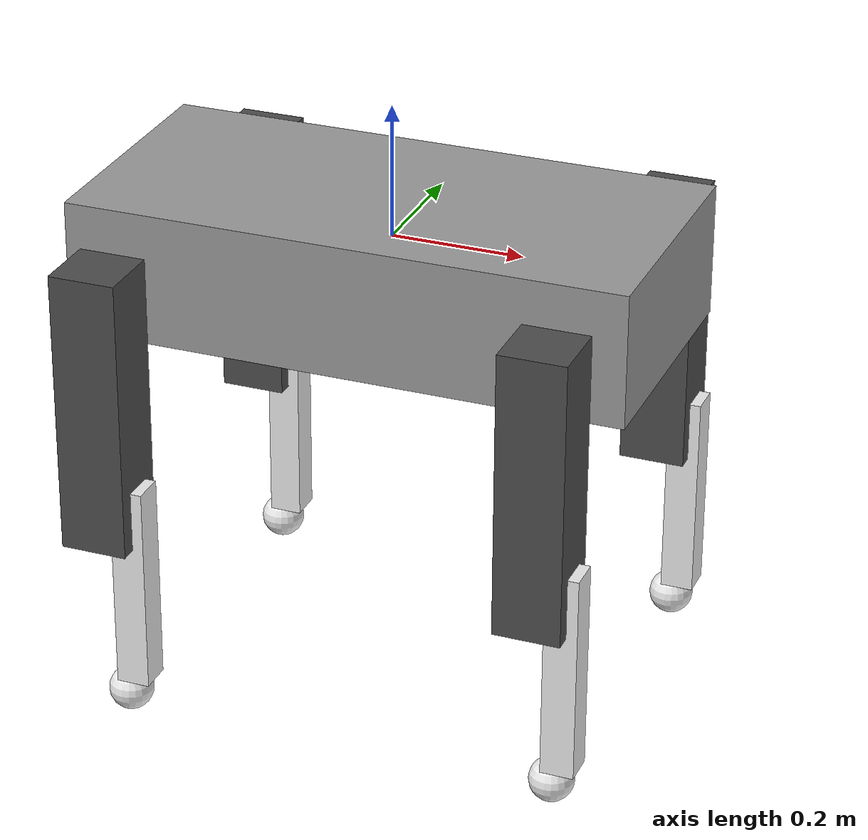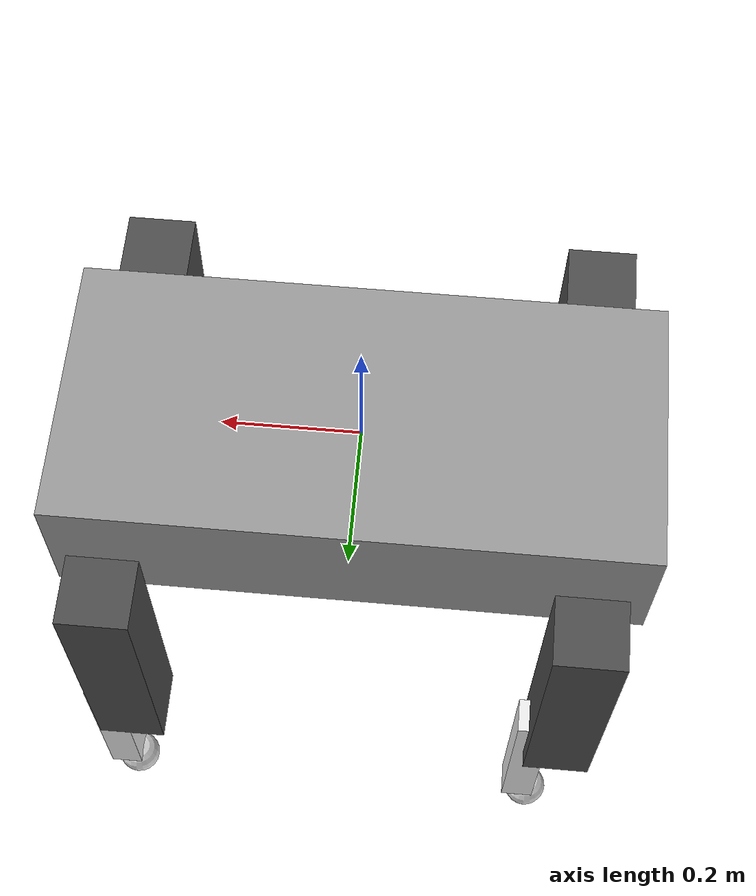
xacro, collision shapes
<?xml version="1.0" encoding="utf-8"?>
<robot name="popi" xmlns:xacro="http://www.ros.org/wiki/xacro">

<!-- Import Rviz colors -->
 	<xacro:include filename="$(find popi_description)/xacro/physicprop.xacro" />

<!--*************************************** CORPS ****************************************-->

	<link name="Base_flottante">
        <visual>
            <origin rpy="0 0 0" xyz="0 0 0"/>
            <geometry>
                <box size="0.001 0.001 0.001"/>
            </geometry>
        </visual>
    </link>

    <joint name="base_flottante" type="fixed">
        <origin rpy="0 0 0" xyz="0 0 0"/>
        <parent link="Base_flottante"/>
        <child link="Bati"/>
    </joint>

  	<link name="Bati">
	    <inertial>
		    <origin xyz="0 0 -0.03523"
		        	rpy="0 0 0" />
		    <mass value="${masse_bati}" />
		    <inertia 	ixx="0.38573"  ixy="0"   		ixz="0"
										iyy="0.90692" 	iyz="0"
		        										izz="1.2277" />
	    </inertial>
	    <visual>
		    <origin xyz="0 0 0"
		        	rpy="0 0 0" />
		    <geometry>
		    	<mesh filename="package://popi_description/meshes/Bati.STL" />
		    </geometry>
		    <material name="grey"/>
	    </visual>
	    <collision>
	      	<origin xyz="0 0 -0.035"
	        	  	rpy="0 0 0" />
	      	<geometry>
          		<box size="0.84 0.4 0.2" />
	      	</geometry>
	    </collision>
  	</link>

<!--********************************* JAMBE AVANT-DROITE *********************************-->

  	<link name="EpauleAVD">
	    <inertial>
	      	<origin xyz="-0.00137 0.04355 -0.00354"
	        		rpy="0 0 0" />
	     	<mass value="${masse_epaule}" />
	      	<inertia  	ixx="0.0286" 	ixy="6E-05" 	ixz="-0.00018"
	        							iyy="0.01067" 	iyz="-0.00075"
	        											izz="0.02893" />
	    </inertial>
    	<visual>
      		<origin xyz="0 0 0"
        			rpy="0 0 0" />
	      	<geometry>
	        	<mesh filename="package://popi_description/meshes/EpauleAVD.STL" />
	      	</geometry>
	      	<material name="orange"/>
    	</visual>
    	<collision>
      		<origin xyz="0 0.075 0"
        			rpy="0 0 0" />
      		<geometry>
          		<box size="0.15 0.15 0.12" />
      		</geometry>
    	</collision>
  	</link>

  	<link name="HJambeAVD">
    	<inertial>
     		<origin xyz="0.01743 0.00512 -0.11331"
        			rpy="0 0 0" />
      		<mass value="${masse_hjambe}" />
      		<inertia 	ixx="0.00899" 	ixy="0.00215" 	ixz="0.00647"
        								iyy="0.0605"    iyz="-0.00043"
        												izz="0.05703" />
    	</inertial>
    	<visual>
      		<origin xyz="0 0 0"
        			rpy="0 -1.5708 0" />
      		<geometry>
        		<mesh filename="package://popi_description/meshes/HJambeAVD.STL" />
      		</geometry>
      		<material name="darkgrey"/>
    	</visual>
    	<collision>
      		<origin xyz="0 0 -0.15"
        			rpy="0 0 0" />
      		<geometry>
          		<box size="0.1 0.1 -0.43" />
      		</geometry>
    	</collision>
  	</link>

  	<link name="BJambeAVD">
    	<inertial>
      		<origin xyz="-0.012387 0 -0.11761"
        			rpy="0 0 0" />
      		<mass value="${masse_bjambe}" />
      		<inertia 	ixx="0.000103" 	ixy="0.000000" 	ixz="-0.00019"
      									iyy="0.006798" 	iyz="0"
        												izz="0.006776" />
    	</inertial>
    	<visual>
      		<origin xyz="0 0 0"
        			rpy="0 1.5708 0" />
      		<geometry>
        		<mesh filename="package://popi_description/meshes/BJambeAVD.STL" />
      		</geometry>
      		<material name="white"/>
    	</visual>
    	<collision>
      		<origin xyz="0 0 -0.08"
        			rpy="0 0 0" />
      		<geometry>
          		<box size="0.05 0.05 -0.32" />
      		</geometry>
    	</collision>
  	</link>

  	<link name="PiedAVD">
    	<inertial>
      		<origin xyz="0.0005 1.1348E-09 -1.2018E-09"
        			rpy="0 0 0" />
      		<mass value="${masse_pied}" />
      		<inertia 	ixx="1.0417E-10"	ixy="3.2086E-25"	ixz="2.1003E-26"
        									iyy="5.4167E-11"	iyz="6.3205E-25"
        														izz="5.4167E-11" />
    	</inertial>
    	<visual>
      		<origin xyz="0 0 0"
        	    	rpy="0 0 0" />
      		<geometry>
        		<mesh filename="package://popi_description/meshes/PiedAVD.STL" />
      		</geometry>
      		<material name="white"/>
    	</visual>
    	<collision>
      		<origin xyz="0 0 0.033"
        	  		rpy="0 0 0" />
      		<geometry>
        		<sphere radius="0.0335" />
      		</geometry>
    	</collision>
  	</link>

<!--********************************* JAMBE AVANT-GAUCHE *********************************-->

    <link name="EpauleAVG">
    	<inertial>
      		<origin xyz="-0.00137 -0.04355 -0.00354"
        			rpy="0 0 0" />
      		<mass value="${masse_epaule}" />
      		<inertia 	ixx="0.02864" 	ixy="-6E-05"	ixz="-0.00018"
        								iyy="0.01067"	iyz="0.00075"
        												izz="0.02893" />
    	</inertial>
    	<visual>
      		<origin xyz="0 0 0"
        			rpy="0 0 0" />
     		 <geometry>
       			<mesh filename="package://popi_description/meshes/EpauleAVG.STL" />
      		</geometry>
      		<material name="orange"/>
    	</visual>
    	<collision>
      		<origin xyz="0 -0.075 0"
        			rpy="0 0 0" />
      		<geometry>
          		<box size="0.15 0.15 0.12" />
      		</geometry>
    	</collision>
  	</link>

	<link name="HJambeAVG">
	    <inertial>
	      	<origin xyz="0.00901 -0.00555 -0.11389"
	        		rpy="0 -1.495 0" />
	      	<mass value="${masse_hjambe}" />
	      	<inertia 	ixx="0.01032" 	ixy="-0.00226" 	ixz="0.01011"
	        							iyy="0.06056" 	iyz="0.00025"
	        											izz="0.05596" />
	    </inertial>
	    <visual>
	     	<origin xyz="0 0 0"
	        		rpy="0 -1.495 0" />
	      	<geometry>
	        	<mesh filename="package://popi_description/meshes/HJambeAVG.STL" />
	      	</geometry>
	      	<material name="darkgrey"/>
	    </visual>
    	<collision>
      		<origin xyz="0 0 -0.15"
        			rpy="0 0 0" />
      		<geometry>
          		<box size="0.1 0.1 -0.43" />
      		</geometry>
    	</collision>
	</link>

	<link name="BJambeAVG">
	    <inertial>
	      	<origin xyz="-0.012387 0 -0.11761"
	        		rpy="0 0 0" />
	      	<mass value="${masse_bjambe}" />
	      	<inertia 	ixx="0.000103" 	ixy="0.000000" 	ixz="-0.00019"
      									iyy="0.006798" 	iyz="0"
        												izz="0.006776" />
	    </inertial>
	    <visual>
	      	<origin xyz="0 0 0"
        		  	rpy="0 1.5708 0" />
	      	<geometry>
	        	<mesh filename="package://popi_description/meshes/BJambeAVG.STL" />
	      	</geometry>
	      	<material name="white"/>
	    </visual>
    	<collision>
      		<origin xyz="0 0 -0.08"
        			rpy="0 0 0" />
      		<geometry>
          		<box size="0.05 0.05 -0.32" />
      		</geometry>
    	</collision>
	</link>

	<link name="PiedAVG">
    	<inertial>
      		<origin xyz="0.0005 -3.5068E-06 -4.4931E-09"
        	  		rpy="0 0 0" />
      		<mass value="${masse_pied}" />
      		<inertia 		ixx="1.0417E-10" 	ixy="4.4849E-25" 	ixz="1.454E-25"
        										iyy="5.4167E-11" 	iyz="6.3205E-25"
        															izz="5.4167E-11" />
    	</inertial>
	    <visual>
	    	<origin xyz="0 0 0"
	        	  	rpy="0 0 0" />
	    	<geometry>
	        	<mesh filename="package://popi_description/meshes/PiedAVG.STL" />
	      	</geometry>
	      	<material name="white"/>
	    </visual>
	    <collision>
      		<origin xyz="0 0 0.033"
        	  		rpy="0 0 0" />
      		<geometry>
        		<sphere radius="0.0335" />
      		</geometry>
    	</collision>
  	</link>

<!--******************************** JAMBE ARRIERE-DROITE ********************************-->
	<link name="EpauleARD">
	    <inertial>
	      	<origin xyz="0.00137 0.04355 -0.00354"
	        		rpy="0 0 0" />
	      	<mass value="${masse_epaule}" />
	     	<inertia 	ixx="0.02864" 	ixy="-6E-05" 	ixz="1.8E-05"
	        							iyy="0.01067"	iyz="-0.00075"
	        											izz="0.02893" />
	    </inertial>
	    <visual>
	      	<origin xyz="0 0 0"
	        		rpy="0 0 0" />
	        <geometry>
	        	<mesh filename="package://popi_description/meshes/EpauleARD.STL" />
	      	</geometry>
	      	<material name="orange"/>
	    </visual>
	    <collision>
	      	<origin xyz="0 0.075 0"
	        		rpy="0 0 0" />
	        <geometry>
          		<box size="0.15 0.15 0.12" />
	      	</geometry>
	    </collision>
	</link>

	<link name="HJambeARD">
	    <inertial>
	     	<origin xyz="0.01743 0.00512 -0.11331"
	        		rpy="0 0 0" />
	      	<mass value="${masse_hjambe}" />
	      	<inertia 	ixx="0.00899" 	ixy="0.00215" 	ixz="0.00647"
	        							iyy="0.0605"  	iyz="-0.00043"
	        											izz="0.05703" />
	    </inertial>
	    <visual>
	      	<origin xyz="0 0 0"
	        		rpy="0 -1.5708 0" />
	      	<geometry>
	        	<mesh filename="package://popi_description/meshes/HJambeARD.STL" />
	      	</geometry>
	      	<material name="darkgrey"/>
	    </visual>
    	<collision>
      		<origin xyz="0 0 -0.15"
        			rpy="0 0 0" />
      		<geometry>
          		<box size="0.1 0.1 -0.43" />
      		</geometry>
    	</collision>
	</link>

  	<link name="BJambeARD">
	    <inertial>
	      	<origin xyz="-0.012387 0 -0.11761"
	        		rpy="0 0 0" />
	      	<mass value="${masse_bjambe}" />
	      	<inertia 	ixx="0.000103" 	ixy="0.000000" 	ixz="-0.00019"
      									iyy="0.006798" 	iyz="0"
        												izz="0.006776" />
	    </inertial>
	    <visual>
	      	<origin xyz="0 0 0"
	        		rpy="0 1.5708 0" />
	      	<geometry>
	        	<mesh filename="package://popi_description/meshes/BJambeARD.STL" />
	      	</geometry>
	      	<material name="white"/>
	    </visual>
	    <collision>
      		<origin xyz="0 0 -0.08"
        			rpy="0 0 0" />
      		<geometry>
          		<box size="0.05 0.05 -0.32" />
      		</geometry>
    	</collision>
  	</link>

	<link name="PiedARD">
	    <inertial>
	      	<origin xyz="0.0005 -3.0378E-12 -8.2379E-14"
	        		rpy="0 0 0" />
	      	<mass value="${masse_pied}" />
	    	<inertia ixx="1.0417E-10"	ixy="-3.7731E-26"	ixz="-1.6964E-25"
	        							iyy="5.4167E-11" 	iyz="1.0234E-25"
	        												izz="5.4167E-11" />
	    </inertial>
	    <visual>
	    	<origin xyz="0 0 0"
	        		rpy="0 0 0" />
	      	<geometry>
	        	<mesh filename="package://popi_description/meshes/PiedARD.STL" />
	      	</geometry>
	      	<material name="white"/>
	    </visual>
	    <collision>
      		<origin xyz="0 0 0.033"
        	  		rpy="0 0 0" />
      		<geometry>
        		<sphere radius="0.0335" />
      		</geometry>
    	</collision>
	</link>

<!--******************************** JAMBE ARRIERE-GAUCHE ********************************-->

  	<link name="EpauleARG">
	    <inertial>
	      	<origin xyz="0.00137 -0.04355 -0.00354"
	        		rpy="0 0 0" />
	      	<mass value="${masse_epaule}" />
	      	<inertia 	ixx="0.02864" 	ixy="6E-05" 	ixz="0.00018"
	        							iyy="0.01067" 	iyz="0.00075"
	        											izz="0.02893" />
	    </inertial>
    	<visual>
      		<origin xyz="0 0 0"
        			rpy="0 0 0" />
      		<geometry>
        		<mesh filename="package://popi_description/meshes/EpauleARG.STL" />
      		</geometry>
      		<material name="orange"/>
    	</visual>
    	<collision>
      		<origin xyz="0 -0.075 0"
        			rpy="0 0 0" />
      		<geometry>
          		<box size="0.15 0.15 0.12" />
      		</geometry>
    	</collision>
  	</link>

	<link name="HJambeARG">
	    <inertial>
	      	<origin xyz="0.00901 -0.00555 -0.11389"
	        		rpy="0 -1.495 0" />
	      	<mass value="${masse_hjambe}" />
	      	<inertia 	ixx="0.01032" 	ixy="-0.00226"	ixz="0.01011"
	        							iyy="0.06056"  	iyz="0.00025"
	        											izz="0.05596" />
	    </inertial>
	    <visual>
	      	<origin xyz="0 0 0"
	        		rpy="0 -1.495 0" />
	     	<geometry>
	        	<mesh filename="package://popi_description/meshes/HJambeARG.STL" />
	      	</geometry>
	      	<material name="darkgrey"/>
	    </visual>
    	<collision>
      		<origin xyz="0 0 -0.15"
        			rpy="0 0 0" />
      		<geometry>
          		<box size="0.1 0.1 -0.43" />
      		</geometry>
    	</collision>
	</link>

	<link name="BJambeARG">
	    <inertial>
	      	<origin xyz="-0.012387 0 -0.11761"
	        		rpy="0 0 0" />
	      	<mass value="${masse_bjambe}" />
	      	<inertia ixx="0.000103" 	ixy="0.000000" 	ixz="-0.00019"
      									iyy="0.006798" 	iyz="0"
        												izz="0.006776" />
	    </inertial>
	    <visual>
	      	<origin xyz="0 0 0"
	        		rpy="0 1.5708 0" />
	      	<geometry>
	        	<mesh filename="package://popi_description/meshes/BJambeARG.STL" />
	      	</geometry>
	      	<material name="white"/>
	    </visual>
	    <collision>
      		<origin xyz="0 0 -0.08"
        			rpy="0 0 0" />
      		<geometry>
          		<box size="0.05 0.05 -0.32" />
      		</geometry>
    	</collision>
	</link>

	<link name="PiedARG">
	    <inertial>
	      	<origin xyz="0.0005 -3.5073E-06 5.5511E-14"
	        		rpy="0 0 0" />
	      	<mass value="${masse_pied}" />
	      	<inertia ixx="1.0417E-10" 	ixy="6.1999E-25" 	ixz="-9.8551E-26"
	        							iyy="5.4167E-11" 	iyz="-1.1985E-25"
	        												izz="5.4167E-11" />
	    </inertial>
	    <visual>
	      	<origin xyz="0 0 0"
	        		rpy="0 0 0" />
	      	<geometry>
	        	<mesh filename="package://popi_description/meshes/PiedARG.STL" />
	      	</geometry>
	      	<material name="white"/>
	    </visual>
	    <collision>
      		<origin xyz="0 0 0.033"
        	  		rpy="0 0 0" />
      		<geometry>
        		<sphere radius="0.0335" />
      		</geometry>
    	</collision>
	</link>

<!--********************************* JOINTS AVANT-DROITS ********************************-->

  	<joint name="aileAVD" type="revolute">
    	<origin xyz="0.3305 -0.175 -0.051"
      			rpy="0 0 0" />
    	<parent link="Bati" />
    	<child  link="EpauleAVD" />
    	<axis   xyz="1 0 0" />
    	<limit  lower="${lower_aile}"
      			upper="${upper_aile}"
      			effort="${effort_aile}"
      			velocity="${vel_aile}" />
  		<dynamics damping="${damping_aile}"
  				  friction="${friction_aile}"/>
	</joint>

	<joint name="epauleAVD" type="revolute">
	    <origin xyz="0 -0.1077 0"
	      		rpy="0 0 0" />
	    <parent link="EpauleAVD" />
	    <child  link="HJambeAVD" />
	    <axis   xyz="0 1 0" />
	    <limit  lower="-1.5708"
      			upper="1.5708"
      			effort="${effort_epaule}"
      			velocity="${vel_epaule}" />
	    <dynamics damping="${damping_epaule}"
  				  friction="${friction_epaule}"/>
  	</joint>

  	<joint name="coudeAVD" type="revolute">
	    <origin xyz="0.041509 0 -0.35192"
	      		rpy="0 0 0" />
	    <parent link="HJambeAVD" />
	    <child  link="BJambeAVD" />
	    <axis   xyz="0 1 0" />
	    <limit  lower="-0.26"
      			upper="1.92"
      			effort="${effort_coude}"
      			velocity="${vel_coude}" />
	    <dynamics damping="${damping_coude}"
  				  friction="${friction_coude}"/>
  	</joint>

  	<joint name="piedAVD" type="fixed">
	    <origin xyz="-0.015 0 -0.29604"
	      		rpy="0 0 0" />
	    <parent link="BJambeAVD" />
	    <child 	link="PiedAVD" />
	    <axis 	xyz="0 0 0" />
  	</joint>

<!--******************************** JOINTS AVANT-GAUCHES ********************************-->

	<joint name="aileAVG" type="revolute">
	    <origin xyz="0.3305 0.175 -0.051"
	      		rpy="0 0 0" />
	    <parent link="Bati" />
	    <child  link="EpauleAVG" />
	    <axis   xyz="1 0 0" />
	    <limit  lower="${lower_aile}"
      			upper="${upper_aile}"
      			effort="${effort_aile}"
      			velocity="${vel_aile}" />
	    <dynamics damping="${damping_aile}"
  				  friction="${friction_aile}"/>
	</joint>

	<joint name="epauleAVG" type="revolute">
	    <origin xyz="0 0.1077 0"
	      		rpy="0 0 0" />
	    <parent link="EpauleAVG" />
	    <child  link="HJambeAVG" />
	    <axis   xyz="0 1 0" />
	    <limit  lower="-1.5708"
      			upper="1.5708"
      			effort="${effort_epaule}"
      			velocity="${vel_epaule}" />
	    <dynamics damping="${damping_epaule}"
  				  friction="${friction_epaule}"/>
  	</joint>

  	<joint name="coudeAVG" type="revolute">
	    <origin xyz="0.041509 0 -0.35192"
	      		rpy="0 0 0" />
	    <parent link="HJambeAVG" />
	    <child  link="BJambeAVG" />
	    <axis   xyz="0 1 0" />
	    <limit  lower="-0.26"
      			upper="1.92"
      			effort="${effort_coude}"
      			velocity="${vel_coude}" />
	    <dynamics damping="${damping_coude}"
  				  friction="${friction_coude}"/>
  	</joint>

  	<joint name="piedAVG" type="fixed">
    	<origin xyz="-0.015 0 -0.29604"
      			rpy="0 0 0" />
	    <parent link="BJambeAVG" />
	    <child 	link="PiedAVG" />
	    <axis 	xyz="0 0 0" />
  	</joint>

<!--******************************* JOINTS ARRIERE-DROITS ********************************-->

	<joint  name="aileARD"  type="revolute">
	    <origin xyz="-0.3305 -0.175 -0.051"
	      		rpy="0 0 0" />
	    <parent link="Bati" />
	    <child  link="EpauleARD" />
	    <axis   xyz="1 0 0" />
	    <limit  lower="${lower_aile}"
      			upper="${upper_aile}"
      			effort="${effort_aile}"
      			velocity="${vel_aile}" />
	    <dynamics damping="${damping_aile}"
  				  friction="${friction_aile}"/>
	</joint>
	<joint name="epauleARD" type="revolute">
	    <origin xyz="0 -0.1077 0"
	      		rpy="0 0 0" />
	    <parent link="EpauleARD" />
	    <child  link="HJambeARD" />
	    <axis   xyz="0 1 0" />
	    <limit  lower="-1.5708"
      			upper="1.5708"
      			effort="${effort_epaule}"
      			velocity="${vel_epaule}" />
	    <dynamics damping="${damping_epaule}"
  				  friction="${friction_epaule}"/>
	</joint>
	<joint name="coudeARD" type="revolute">
	    <origin xyz="0.041509 0 -0.35192"
	      		rpy="0 0 0" />
	    <parent link="HJambeARD" />
	    <child  link="BJambeARD" />
	    <axis   xyz="0 1 0" />
	    <limit  lower="-0.26"
      			upper="1.92"
      			effort="${effort_coude}"
      			velocity="${vel_coude}" />
	    <dynamics damping="${damping_coude}"
  				  friction="${friction_coude}"/>
	</joint>

	<joint name="piedARD" type="fixed">
	    <origin xyz="-0.015 0 -0.29604"
	      		rpy="0 0 0" />
	    <parent link="BJambeARD" />
	    <child 	link="PiedARD" />
	    <axis 	xyz="0 0 0" />
  	</joint>

<!--****************************** JOINTS ARRIERE-GAUCHES ********************************-->

	<joint name="aileARG" type="revolute">
    	<origin xyz="-0.3305 0.175 -0.051"
      			rpy="0 0 0" />
    	<parent link="Bati" />
	    <child  link="EpauleARG" />
	    <axis   xyz="1 0 0" />
	    <limit  lower="${lower_aile}"
      			upper="${upper_aile}"
      			effort="${effort_aile}"
      			velocity="${vel_aile}" />
	    <dynamics damping="${damping_aile}"
  				  friction="${friction_aile}"/>
  	</joint>
  	<joint name="epauleARG" type="revolute">
	    <origin xyz="0 0.1077 0"
	      		rpy="0 0 0" />
	    <parent link="EpauleARG" />
	    <child  link="HJambeARG" />
	    <axis   xyz="0 1 0" />
	    <limit  lower="-1.5708"
      			upper="1.5708"
      			effort="${effort_epaule}"
      			velocity="${vel_epaule}" />
	    <dynamics damping="${damping_epaule}"
  				  friction="${friction_epaule}"/>
  	</joint>
	<joint name="coudeARG" type="revolute">
		<origin xyz="0.041509 0 -0.35192"
		  		rpy="0 0 0" />
		<parent link="HJambeARG" />
		<child  link="BJambeARG" />
		<axis   xyz="0 1 0" />
		<limit  lower="-0.26"
      			upper="1.92"
      			effort="${effort_coude}"
      			velocity="${vel_coude}" />
		<dynamics damping="${damping_coude}"
  				  friction="${friction_coude}"/>
	</joint>

	<joint name="piedARG" type="fixed">
	    <origin xyz="-0.015 0 -0.29604"
	      		rpy="0 0 0" />
	    <parent link="BJambeARG" />
	    <child 	link="PiedARG" />
	    <axis 	xyz="0 0 0" />
	</joint>

<!--********************************** PLUGINS GAZEBO ************************************-->
  	<gazebo>
    	<plugin name="gazebo_ros_control" filename="libgazebo_ros_control.so">
            <legacyModeNS>true</legacyModeNS>
    	</plugin>
  	</gazebo>

<!--***************************** TRANSMISSIONS AVANT-DROITES ****************************-->

  	<transmission name="aileAVD_tran">
    	<type>transmission_interface/SimpleTransmission</type>
    	<joint name="aileAVD">
      		<hardwareInterface>hardware_interface/EffortJointInterface</hardwareInterface>
    	</joint>
    	<actuator name="aileAVD_moteur">
      		<mechanicalReduction>1</mechanicalReduction>
      		<hardwareInterface>hardware_interface/EffortJointInterface</hardwareInterface>
    	</actuator>
  	</transmission>

  	<transmission name="epauleAVD_tran">
    	<type>transmission_interface/SimpleTransmission</type>
    	<joint name="epauleAVD">
      		<hardwareInterface>hardware_interface/EffortJointInterface</hardwareInterface>
    	</joint>
    	<actuator name="epauleAVD_moteur">
      		<mechanicalReduction>1</mechanicalReduction>
      		<hardwareInterface>hardware_interface/EffortJointInterface</hardwareInterface>
    	</actuator>
  	</transmission>

  	<transmission name="coudeAVD_tran">
    	<type>transmission_interface/SimpleTransmission</type>
    	<joint name="coudeAVD">
      		<hardwareInterface>hardware_interface/EffortJointInterface</hardwareInterface>
    	</joint>
    	<actuator name="coudeAVD_moteur">
      		<mechanicalReduction>1</mechanicalReduction>
      		<hardwareInterface>hardware_interface/EffortJointInterface</hardwareInterface>
    	</actuator>
  	</transmission>

<!--***************************** TRANSMISSIONS AVANT-GAUCHES ****************************-->

    <transmission name="aileAVG_tran">
    	<type>transmission_interface/SimpleTransmission</type>
    	<joint name="aileAVG">
      		<hardwareInterface>hardware_interface/EffortJointInterface</hardwareInterface>
    	</joint>
    	<actuator name="aileAVG_moteur">
      		<mechanicalReduction>1</mechanicalReduction>
      		<hardwareInterface>hardware_interface/EffortJointInterface</hardwareInterface>
    	</actuator>
  	</transmission>

  	<transmission name="epauleAVG_tran">
    	<type>transmission_interface/SimpleTransmission</type>
    	<joint name="epauleAVG">
      		<hardwareInterface>hardware_interface/EffortJointInterface</hardwareInterface>
    	</joint>
    	<actuator name="epauleAVG_moteur">
      		<mechanicalReduction>1</mechanicalReduction>
      		<hardwareInterface>hardware_interface/EffortJointInterface</hardwareInterface>
    	</actuator>
  	</transmission>

  	<transmission name="coudeAVG_tran">
    	<type>transmission_interface/SimpleTransmission</type>
    	<joint name="coudeAVG">
      		<hardwareInterface>hardware_interface/EffortJointInterface</hardwareInterface>
    	</joint>
    	<actuator name="coudeAVG_moteur">
      		<mechanicalReduction>1</mechanicalReduction>
      		<hardwareInterface>hardware_interface/EffortJointInterface</hardwareInterface>
    	</actuator>
  	</transmission>

<!--**************************** TRANSMISSIONS ARRIERE-DROITES ***************************-->

    <transmission name="aileARD_tran">
    	<type>transmission_interface/SimpleTransmission</type>
    	<joint name="aileARD">
      		<hardwareInterface>hardware_interface/EffortJointInterface</hardwareInterface>
    	</joint>
    	<actuator name="aileARD_moteur">
      		<mechanicalReduction>1</mechanicalReduction>
      		<hardwareInterface>hardware_interface/EffortJointInterface</hardwareInterface>
    	</actuator>
  	</transmission>

  	<transmission name="epauleARD_tran">
    	<type>transmission_interface/SimpleTransmission</type>
    	<joint name="epauleARD">
      		<hardwareInterface>hardware_interface/EffortJointInterface</hardwareInterface>
    	</joint>
    	<actuator name="epauleARD_moteur">
      		<mechanicalReduction>1</mechanicalReduction>
      		<hardwareInterface>hardware_interface/EffortJointInterface</hardwareInterface>
    	</actuator>
  	</transmission>

  	<transmission name="coudeARD_tran">
    	<type>transmission_interface/SimpleTransmission</type>
    	<joint name="coudeARD">
      		<hardwareInterface>hardware_interface/EffortJointInterface</hardwareInterface>
    	</joint>
    	<actuator name="coudeARD_moteur">
      		<mechanicalReduction>1</mechanicalReduction>
      		<hardwareInterface>hardware_interface/EffortJointInterface</hardwareInterface>
    	</actuator>
  	</transmission>

<!--**************************** TRANSMISSIONS ARRIERE-GAUCHES ***************************-->

    <transmission name="aileARG_tran">
    	<type>transmission_interface/SimpleTransmission</type>
    	<joint name="aileARG">
      		<hardwareInterface>hardware_interface/EffortJointInterface</hardwareInterface>
    	</joint>
    	<actuator name="aileARG_moteur">
      		<mechanicalReduction>1</mechanicalReduction>
      		<hardwareInterface>hardware_interface/EffortJointInterface</hardwareInterface>
    	</actuator>
  	</transmission>

  	<transmission name="epauleARG_tran">
    	<type>transmission_interface/SimpleTransmission</type>
    	<joint name="epauleARG">
      		<hardwareInterface>hardware_interface/EffortJointInterface</hardwareInterface>
    	</joint>
    	<actuator name="epauleARG_moteur">
      		<mechanicalReduction>1</mechanicalReduction>
      		<hardwareInterface>hardware_interface/EffortJointInterface</hardwareInterface>
    	</actuator>
  	</transmission>

  	<transmission name="coudeARG_tran">
    	<type>transmission_interface/SimpleTransmission</type>
    	<joint name="coudeARG">
      		<hardwareInterface>hardware_interface/EffortJointInterface</hardwareInterface>
    	</joint>
    	<actuator name="coudeARG_moteur">
      		<mechanicalReduction>1</mechanicalReduction>
      		<hardwareInterface>hardware_interface/EffortJointInterface</hardwareInterface>
    	</actuator>
  	</transmission>

</robot>
